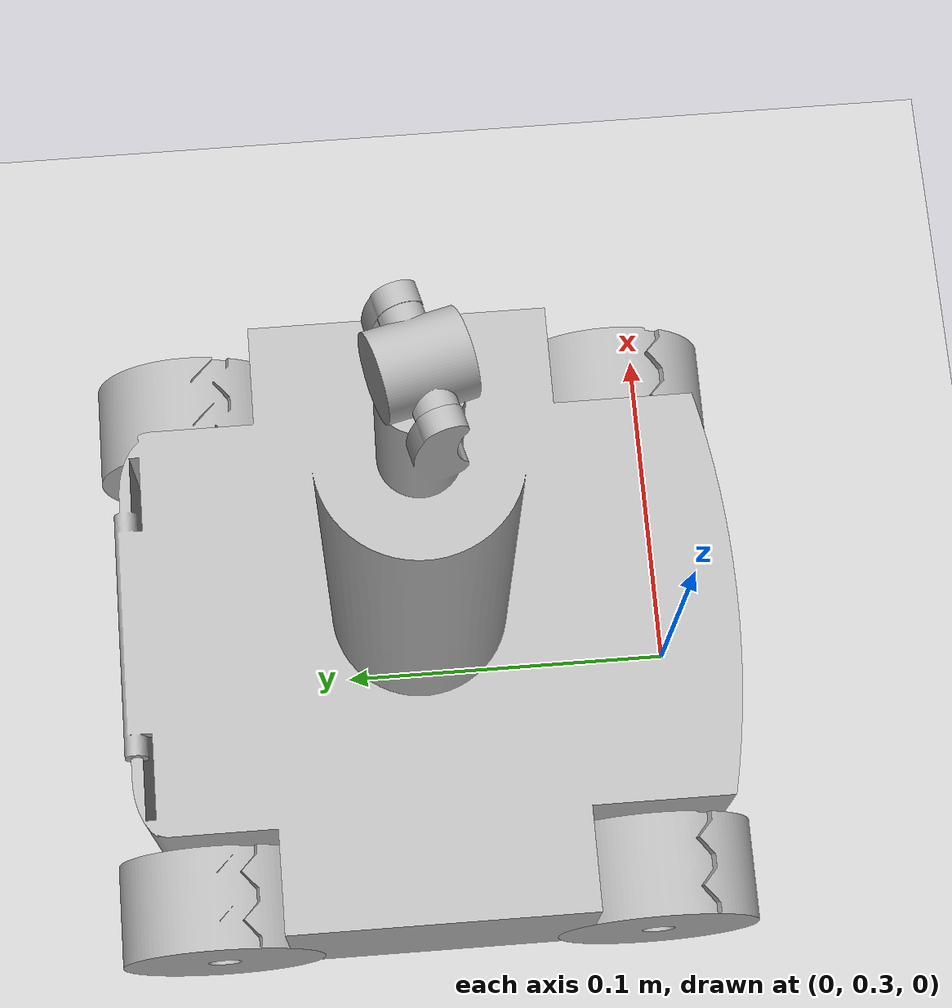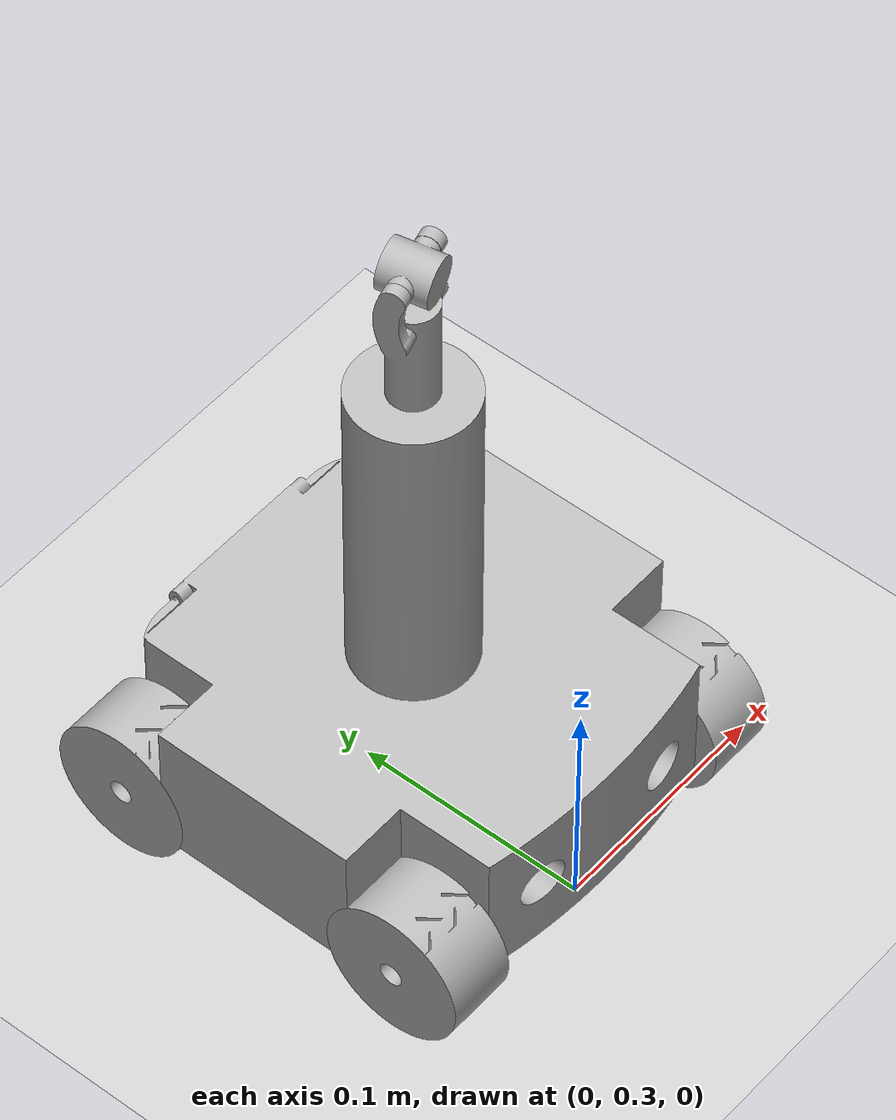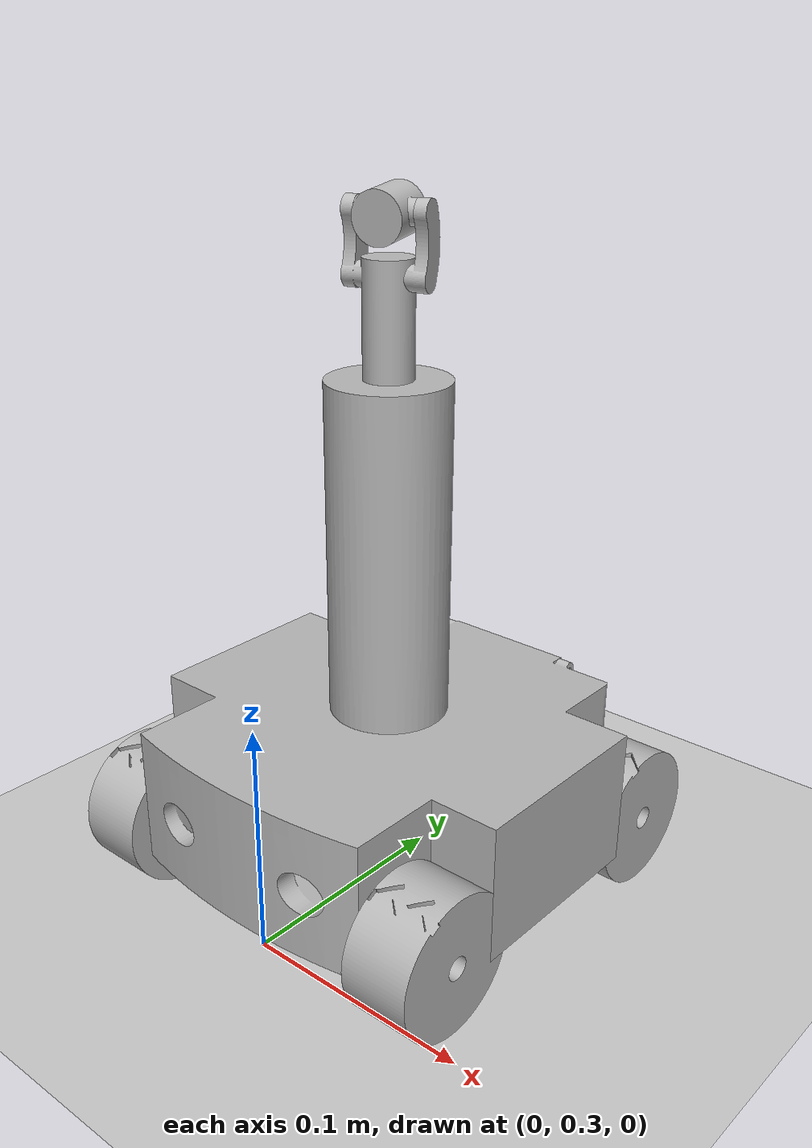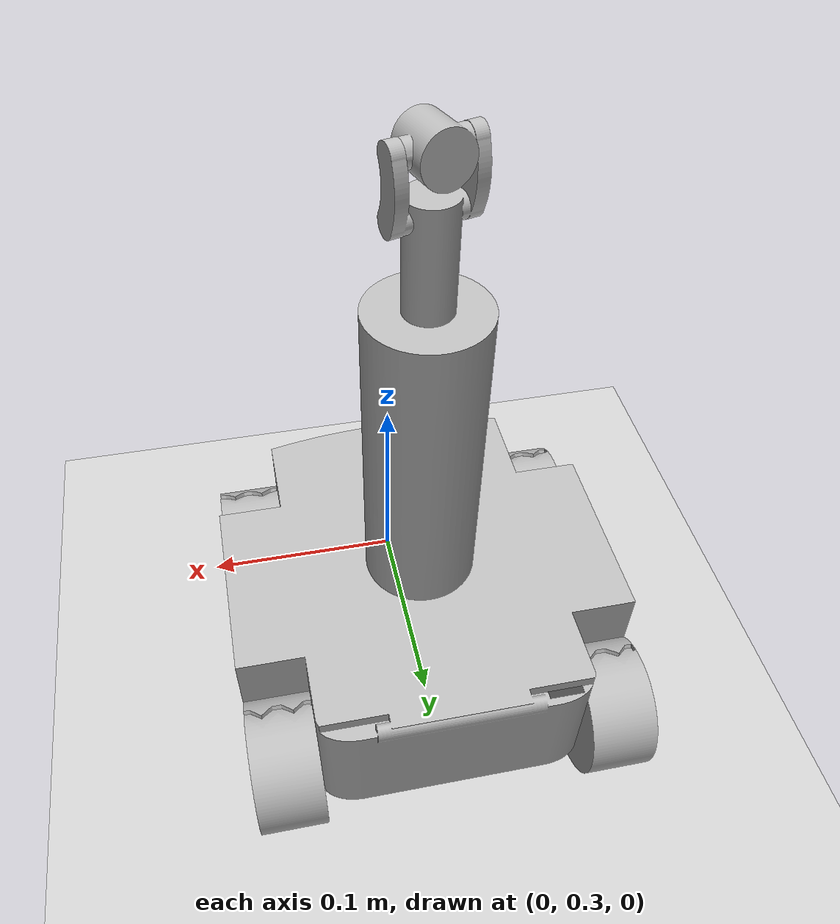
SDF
<sdf version='1.9'>
  <world name='car_world'>
    <physics name='1ms' type='ignored'>
      <max_step_size>0.001</max_step_size>
      <real_time_factor>1</real_time_factor>
      <real_time_update_rate>1000</real_time_update_rate>
    </physics>
    <plugin name='ignition::gazebo::systems::Physics' filename='libignition-gazebo-physics-system.so'/>
    <plugin name='ignition::gazebo::systems::UserCommands' filename='libignition-gazebo-user-commands-system.so'/>
    <plugin name='ignition::gazebo::systems::SceneBroadcaster' filename='libignition-gazebo-scene-broadcaster-system.so'/>
    <gravity>0 0 -9.8</gravity>
    <magnetic_field>6e-06 2.3e-05 -4.2e-05</magnetic_field>
    <atmosphere type='adiabatic'/>
    <scene>
      <ambient>0.4 0.4 0.4 1</ambient>
      <background>0.7 0.7 0.7 1</background>
      <shadows>true</shadows>
    </scene>
    <model name='ground_plane'>
      <static>true</static>
      <link name='link'>
        <collision name='collision'>
          <geometry>
            <plane>
              <normal>0 0 1</normal>
              <size>1 1</size>
            </plane>
          </geometry>
          <surface>
            <friction>
              <ode/>
            </friction>
            <bounce/>
            <contact/>
          </surface>
        </collision>
        <visual name='visual'>
          <geometry>
            <plane>
              <normal>0 0 1</normal>
              <size>100 100</size>
            </plane>
          </geometry>
          <material>
            <ambient>0.8 0.8 0.8 1</ambient>
            <diffuse>0.8 0.8 0.8 1</diffuse>
            <specular>0.8 0.8 0.8 1</specular>
          </material>
        </visual>
        <pose>0 0 0 0 -0 0</pose>
        <inertial>
          <pose>0 0 0 0 -0 0</pose>
          <mass>1</mass>
          <inertia>
            <ixx>1</ixx>
            <ixy>0</ixy>
            <ixz>0</ixz>
            <iyy>1</iyy>
            <iyz>0</iyz>
            <izz>1</izz>
          </inertia>
        </inertial>
        <enable_wind>false</enable_wind>
      </link>
      <pose>0 0 0 0 -0 0</pose>
      <self_collide>false</self_collide>
    </model>
    <model name='RaspRover'>
      <link name='Frame'>
        <pose>-0.200286 -0.192087 -0.025303 0 -0 0</pose>
        <inertial>
          <mass>5.5793799999999996</mass>
          <pose>0.200286 -0.183239 -0.061358 0 -0 0</pose>
          <inertia>
            <ixx>0.028476899999999999</ixx>
            <iyy>0.028655799999999999</iyy>
            <izz>0.019928299999999999</izz>
            <ixy>6.4728499999999998e-14</ixy>
            <iyz>-0.00084195600000000004</iyz>
            <ixz>2.1132899999999999e-14</ixz>
          </inertia>
        </inertial>
        <visual name='Frame_visual'>
          <geometry>
            <mesh>
              <uri>file://meshes/Frame.stl</uri>
              <scale>0.001 0.001 0.001</scale>
            </mesh>
          </geometry>
        </visual>
        <collision name='Frame_collision'>
          <geometry>
            <mesh>
              <uri>file://meshes/Frame.stl</uri>
              <scale>0.001 0.001 0.001</scale>
            </mesh>
          </geometry>
        </collision>
        <enable_wind>false</enable_wind>
      </link>
      <link name='Wheel_BR'>
        <pose>0.0554 -0.328083 -0.076366 -3.12751 -0 0</pose>
        <inertial>
          <mass>0.64435100000000001</mass>
          <pose>-0.130401 0.115194 -0.050131 0 -0 0</pose>
          <inertia>
            <ixx>0.00029685699999999998</ixx>
            <iyy>0.00019567099999999999</iyy>
            <izz>0.000197865</izz>
            <ixy>-3.1298799999999999e-09</ixy>
            <iyz>-6.0852500000000003e-07</iyz>
            <ixz>1.5396000000000001e-08</ixz>
          </inertia>
        </inertial>
        <visual name='Wheel_BR_visual'>
          <geometry>
            <mesh>
              <uri>file://meshes/Wheel_BR.stl</uri>
              <scale>0.001 0.001 0.001</scale>
            </mesh>
          </geometry>
        </visual>
        <collision name='Wheel_BR_collision'>
          <geometry>
            <mesh>
              <uri>file://meshes/Wheel_BR.stl</uri>
              <scale>0.001 0.001 0.001</scale>
            </mesh>
          </geometry>
        </collision>
        <enable_wind>false</enable_wind>
      </link>
      <link name='Wheel_BL'>
        <pose>-0.0746 -0.328075 -0.076347 -3.12735 0 -0</pose>
        <inertial>
          <mass>0.64435100000000001</mass>
          <pose>0.149599 0.115194 -0.050131 0 -0 0</pose>
          <inertia>
            <ixx>0.00029685699999999998</ixx>
            <iyy>0.00019567099999999999</iyy>
            <izz>0.000197865</izz>
            <ixy>-3.1298799999999999e-09</ixy>
            <iyz>-6.0852500000000003e-07</iyz>
            <ixz>1.5396000000000001e-08</ixz>
          </inertia>
        </inertial>
        <visual name='Wheel_BL_visual'>
          <geometry>
            <mesh>
              <uri>file://meshes/Wheel_BL.stl</uri>
              <scale>0.001 0.001 0.001</scale>
            </mesh>
          </geometry>
        </visual>
        <collision name='Wheel_BL_collision'>
          <geometry>
            <mesh>
              <uri>file://meshes/Wheel_BL.stl</uri>
              <scale>0.001 0.001 0.001</scale>
            </mesh>
          </geometry>
        </collision>
        <enable_wind>false</enable_wind>
      </link>
      <link name='Wheel_FR'>
        <pose>0.0554 -0.382178 -0.087595 -3.00681 -0 0</pose>
        <inertial>
          <mass>0.64435100000000001</mass>
          <pose>-0.130401 -0.074806 -0.050131 0 -0 0</pose>
          <inertia>
            <ixx>0.00029685699999999998</ixx>
            <iyy>0.00019567099999999999</iyy>
            <izz>0.000197865</izz>
            <ixy>-3.1298799999999999e-09</ixy>
            <iyz>-6.0852500000000003e-07</iyz>
            <ixz>1.5396000000000001e-08</ixz>
          </inertia>
        </inertial>
        <visual name='Wheel_FR_visual'>
          <geometry>
            <mesh>
              <uri>file://meshes/Wheel_FR.stl</uri>
              <scale>0.001 0.001 0.001</scale>
            </mesh>
          </geometry>
        </visual>
        <collision name='Wheel_FR_collision'>
          <geometry>
            <mesh>
              <uri>file://meshes/Wheel_FR.stl</uri>
              <scale>0.001 0.001 0.001</scale>
            </mesh>
          </geometry>
        </collision>
        <enable_wind>false</enable_wind>
      </link>
      <link name='Wheel_FL'>
        <pose>-0.0746 -0.38216 -0.087616 -3.00651 -0 0</pose>
        <inertial>
          <mass>0.64435100000000001</mass>
          <pose>0.149599 -0.074806 -0.050131 0 -0 0</pose>
          <inertia>
            <ixx>0.00029685699999999998</ixx>
            <iyy>0.00019567099999999999</iyy>
            <izz>0.000197865</izz>
            <ixy>-3.1298799999999999e-09</ixy>
            <iyz>-6.0852500000000003e-07</iyz>
            <ixz>1.5396000000000001e-08</ixz>
          </inertia>
        </inertial>
        <visual name='Wheel_FL_visual'>
          <geometry>
            <mesh>
              <uri>file://meshes/Wheel_FL.stl</uri>
              <scale>0.001 0.001 0.001</scale>
            </mesh>
          </geometry>
        </visual>
        <collision name='Wheel_FL_collision'>
          <geometry>
            <mesh>
              <uri>file://meshes/Wheel_FL.stl</uri>
              <scale>0.001 0.001 0.001</scale>
            </mesh>
          </geometry>
        </collision>
        <enable_wind>false</enable_wind>
      </link>
      <link name='Camera_Pitch'>
        <pose>-0.003823 -0.393679 -0.078541 -3.06767 0 -0.26052</pose>
        <inertial>
          <mass>0.052130599999999999</mass>
          <pose>-0 2e-06 0.200062 0 -0 0</pose>
          <inertia>
            <ixx>2.9160199999999998e-06</ixx>
            <iyy>2.8170899999999998e-06</iyy>
            <izz>3.2214600000000002e-06</izz>
            <ixy>7.4819500000000003e-19</ixy>
            <iyz>-1.7698199999999999e-11</iyz>
            <ixz>-1.4093499999999999e-19</ixz>
          </inertia>
        </inertial>
        <visual name='Camera_Pitch_visual'>
          <geometry>
            <mesh>
              <uri>file://meshes/Camera_Pitch.stl</uri>
              <scale>0.001 0.001 0.001</scale>
            </mesh>
          </geometry>
        </visual>
        <collision name='Camera_Pitch_collision'>
          <geometry>
            <mesh>
              <uri>file://meshes/Camera_Pitch.stl</uri>
              <scale>0.001 0.001 0.001</scale>
            </mesh>
          </geometry>
        </collision>
        <enable_wind>false</enable_wind>
      </link>
      <link name='Camera_Yaw'>
        <pose>0 -0.379335 -0.077992 3.14159 -0 -0.26052</pose>
        <inertial>
          <mass>0.137903</mass>
          <pose>-0 0.000169 0.167551 0 -0 0</pose>
          <inertia>
            <ixx>3.8542599999999999e-05</ixx>
            <iyy>4.3745000000000002e-05</iyy>
            <izz>1.1257799999999999e-05</izz>
            <ixy>-9.9009700000000007e-18</ixy>
            <iyz>-5.5707300000000003e-07</iyz>
            <ixz>5.9203800000000002e-18</ixz>
          </inertia>
        </inertial>
        <visual name='Camera_Yaw_visual'>
          <geometry>
            <mesh>
              <uri>file://meshes/Camera_Yaw.stl</uri>
              <scale>0.001 0.001 0.001</scale>
            </mesh>
          </geometry>
        </visual>
        <collision name='Camera_Yaw_collision'>
          <geometry>
            <mesh>
              <uri>file://meshes/Camera_Yaw.stl</uri>
              <scale>0.001 0.001 0.001</scale>
            </mesh>
          </geometry>
        </collision>
        <enable_wind>false</enable_wind>
      </link>
      <joint name='Frame_Revolute-1' type='revolute'>
        <pose>-0.1154 -0.07484 -0.05 0 -0 0</pose>
        <parent>Frame</parent>
        <child>Wheel_FR</child>
        <axis>
          <xyz>1 0 -0</xyz>
          <limit>
            <lower>-10000000000000000</lower>
            <upper>10000000000000000</upper>
            <effort>inf</effort>
            <velocity>inf</velocity>
            <stiffness>100000000</stiffness>
            <dissipation>1</dissipation>
          </limit>
          <dynamics>
            <spring_reference>0</spring_reference>
            <spring_stiffness>0</spring_stiffness>
            <damping>0</damping>
            <friction>0</friction>
          </dynamics>
        </axis>
      </joint>
      <joint name='Frame_Revolute-2' type='revolute'>
        <pose>0.1346 -0.07484 -0.05 0 -0 0</pose>
        <parent>Frame</parent>
        <child>Wheel_FL</child>
        <axis>
          <xyz>1 0 -0</xyz>
          <limit>
            <lower>-10000000000000000</lower>
            <upper>10000000000000000</upper>
            <effort>inf</effort>
            <velocity>inf</velocity>
            <stiffness>100000000</stiffness>
            <dissipation>1</dissipation>
          </limit>
          <dynamics>
            <spring_reference>0</spring_reference>
            <spring_stiffness>0</spring_stiffness>
            <damping>0</damping>
            <friction>0</friction>
          </dynamics>
        </axis>
      </joint>
      <joint name='Frame_Revolute-3' type='revolute'>
        <pose>0.1346 0.11516 -0.05 0 -0 0</pose>
        <parent>Frame</parent>
        <child>Wheel_BL</child>
        <axis>
          <xyz>1 -0 0</xyz>
          <limit>
            <lower>-10000000000000000</lower>
            <upper>10000000000000000</upper>
            <effort>inf</effort>
            <velocity>inf</velocity>
            <stiffness>100000000</stiffness>
            <dissipation>1</dissipation>
          </limit>
          <dynamics>
            <spring_reference>0</spring_reference>
            <spring_stiffness>0</spring_stiffness>
            <damping>0</damping>
            <friction>0</friction>
          </dynamics>
        </axis>
      </joint>
      <joint name='Frame_Revolute-4' type='revolute'>
        <pose>-0.1154 0.11516 -0.05 0 -0 0</pose>
        <parent>Frame</parent>
        <child>Wheel_BR</child>
        <axis>
          <xyz>1 0 -0</xyz>
          <limit>
            <lower>-10000000000000000</lower>
            <upper>10000000000000000</upper>
            <effort>inf</effort>
            <velocity>inf</velocity>
            <stiffness>100000000</stiffness>
            <dissipation>1</dissipation>
          </limit>
          <dynamics>
            <spring_reference>0</spring_reference>
            <spring_stiffness>0</spring_stiffness>
            <damping>0</damping>
            <friction>0</friction>
          </dynamics>
        </axis>
      </joint>
      <joint name='Frame_Revolute-5' type='revolute'>
        <pose>-0 -0 0.14 0 -0 0</pose>
        <parent>Frame</parent>
        <child>Camera_Yaw</child>
        <axis>
          <xyz>-0 -0 1</xyz>
          <limit>
            <lower>-1.5708</lower>
            <upper>1.5708</upper>
            <effort>inf</effort>
            <velocity>inf</velocity>
            <stiffness>100000000</stiffness>
            <dissipation>1</dissipation>
          </limit>
          <dynamics>
            <spring_reference>0</spring_reference>
            <spring_stiffness>0</spring_stiffness>
            <damping>0</damping>
            <friction>0</friction>
          </dynamics>
        </axis>
      </joint>
      <joint name='Camera_Yaw_Revolute-6' type='revolute'>
        <pose>0.012 -0 0.201 0 -0 0</pose>
        <parent>Camera_Yaw</parent>
        <child>Camera_Pitch</child>
        <axis>
          <xyz>1 -0 0</xyz>
          <limit>
            <lower>-1.0471999999999999</lower>
            <upper>0.52359900000000004</upper>
            <effort>inf</effort>
            <velocity>inf</velocity>
            <stiffness>100000000</stiffness>
            <dissipation>1</dissipation>
          </limit>
          <dynamics>
            <spring_reference>0</spring_reference>
            <spring_stiffness>0</spring_stiffness>
            <damping>0</damping>
            <friction>0</friction>
          </dynamics>
        </axis>
      </joint>
      <pose>-1.9e-05 -0.001788 0.002004 -3.14159 -0 -4.7e-05</pose>
      <static>false</static>
      <self_collide>false</self_collide>
    </model>
    <light name='sun' type='directional'>
      <pose>0 0 10 0 -0 0</pose>
      <cast_shadows>true</cast_shadows>
      <intensity>1</intensity>
      <direction>-0.5 0.1 -0.9</direction>
      <diffuse>0.8 0.8 0.8 1</diffuse>
      <specular>0.2 0.2 0.2 1</specular>
      <attenuation>
        <range>1000</range>
        <linear>0.01</linear>
        <constant>0.90000000000000002</constant>
        <quadratic>0.001</quadratic>
      </attenuation>
      <spot>
        <inner_angle>0</inner_angle>
        <outer_angle>0</outer_angle>
        <falloff>0</falloff>
      </spot>
    </light>
  </world>
</sdf>
